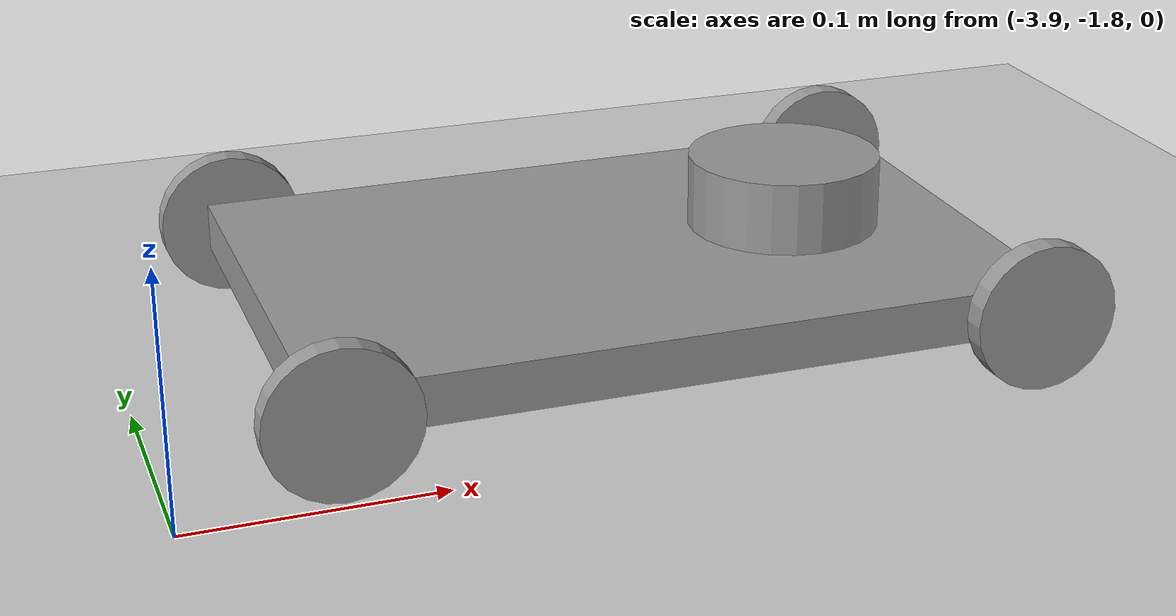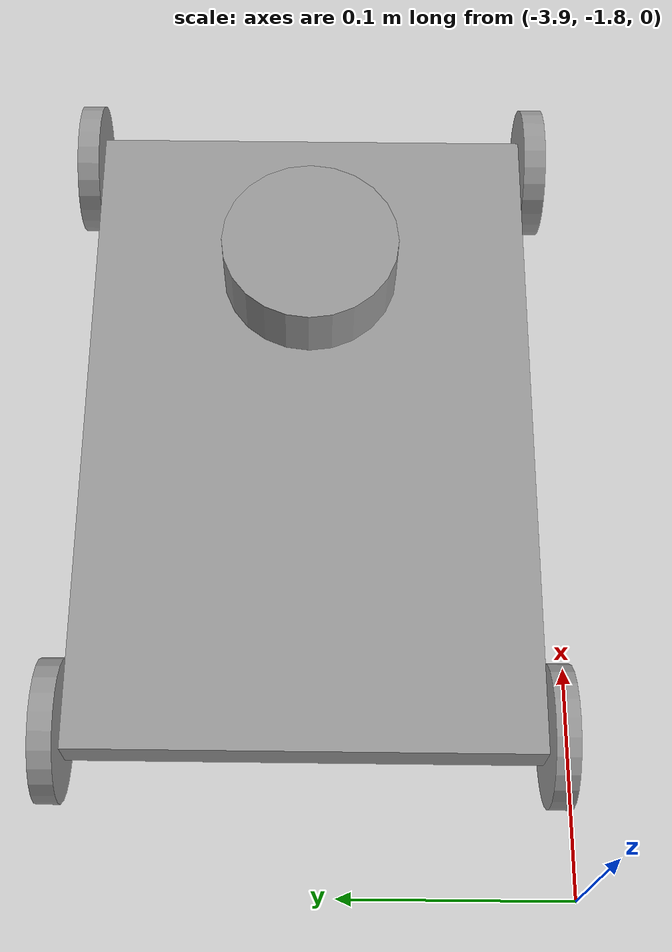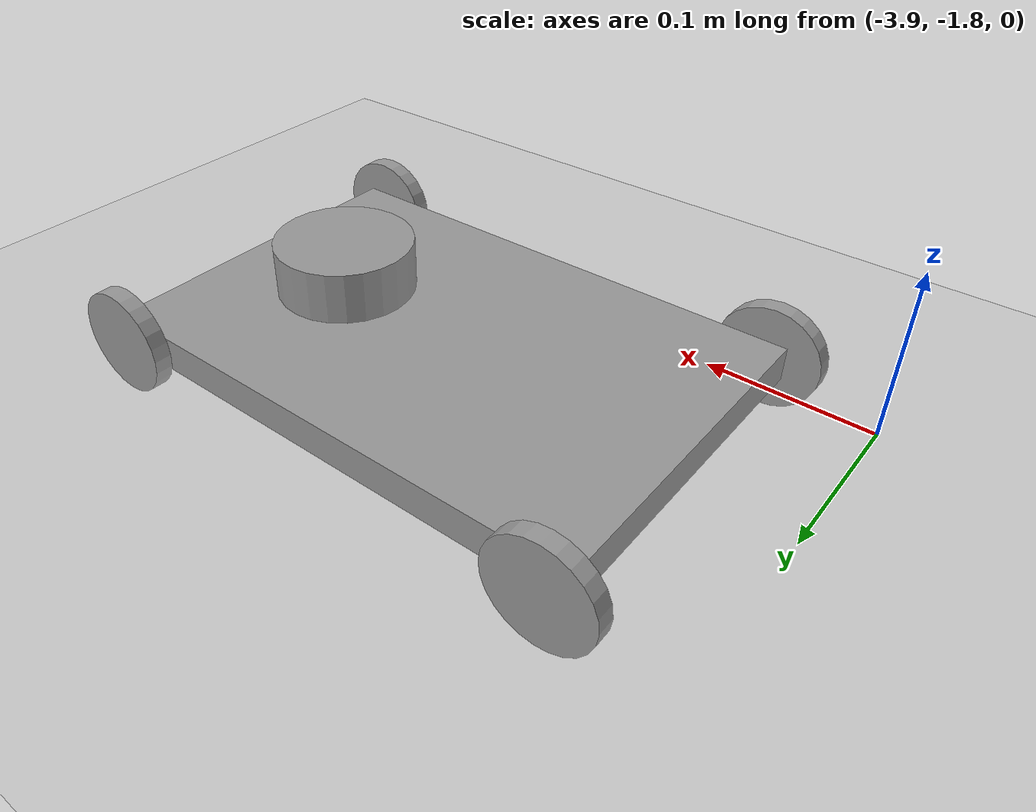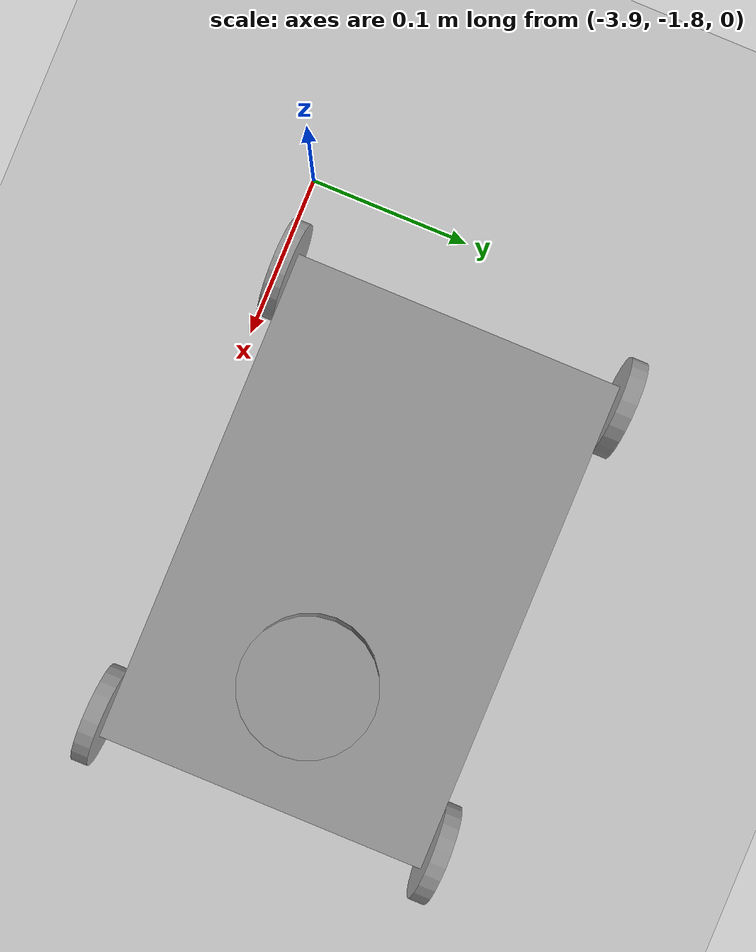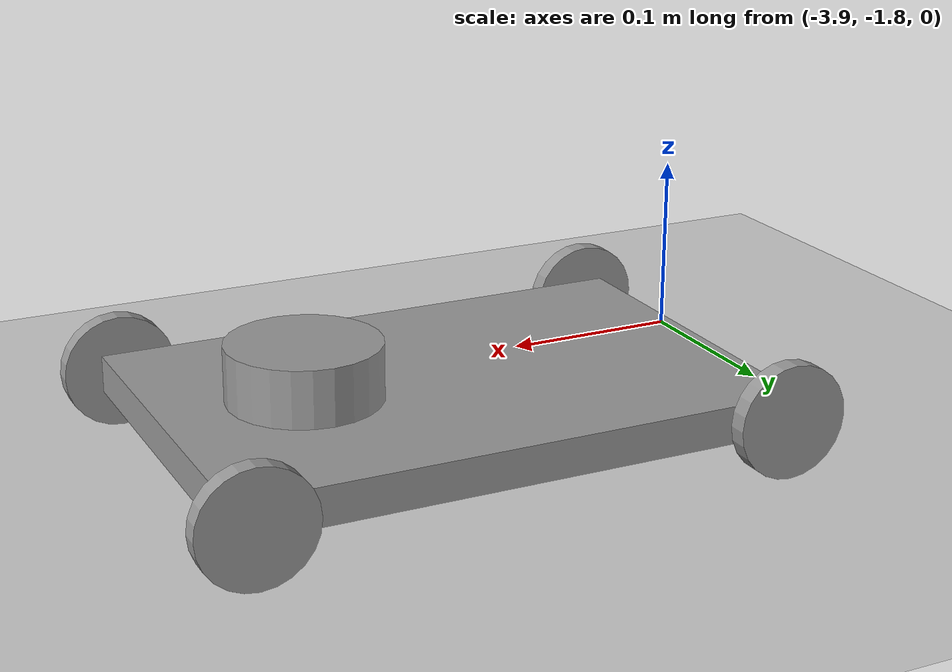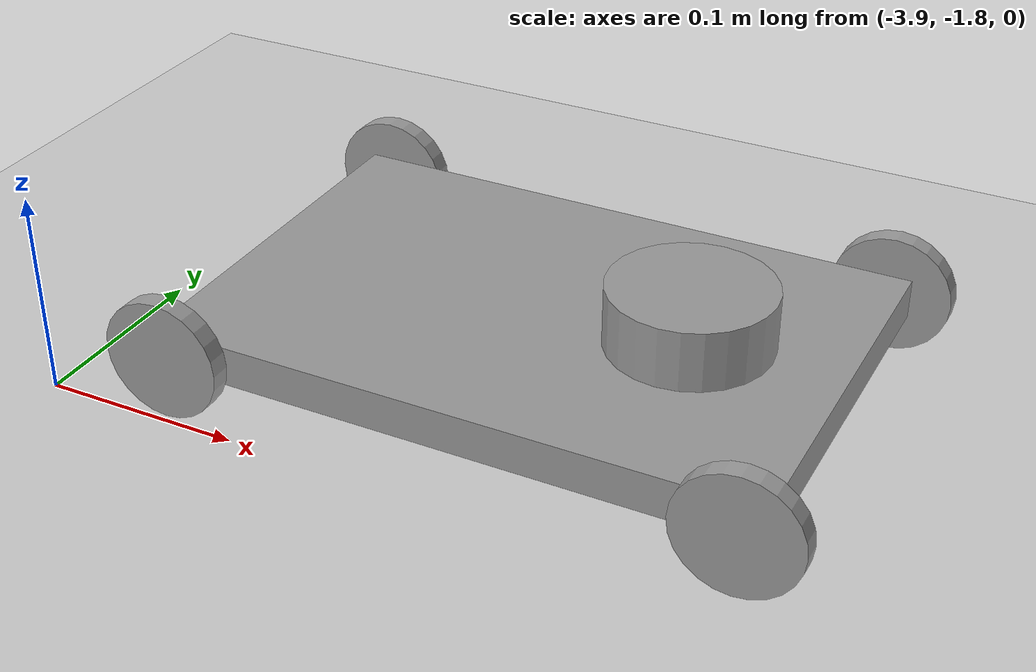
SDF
<sdf version="1.6">
 <world name="default">
  <model name="ground_plane">
   <static>1</static>
   <link name="link">
    <collision name="collision">
     <geometry><plane><normal>0 0 1</normal><size>100 100</size></plane></geometry>
     <surface><friction><ode><mu>100</mu><mu2>50</mu2></ode></friction></surface>
    </collision>
    <visual name="visual">
     <cast_shadows>0</cast_shadows>
     <geometry><plane><normal>0 0 1</normal><size>100 100</size></plane></geometry>
     <material>
      <script><uri>file://media/materials/scripts/gazebo.material</uri><name>Gazebo/Grey</name></script>
     </material>
    </visual>
   </link>
  </model>
  <model name="myrobot_clone">
   <link name="link_0">
    <pose>-0.079072 0.08625 0.009834 0 -0 0</pose>
    <inertial>
     <mass>1</mass>
     <inertia>
      <ixx>0.166667</ixx>
      <ixy>0</ixy>
      <ixz>0</ixz>
      <iyy>0.166667</iyy>
      <iyz>0</iyz>
      <izz>0.166667</izz>
     </inertia>
     <pose>0 0 0.03 0 -0 0</pose>
    </inertial>
    <visual name="visual">
     <pose>0 0 0.03 0 -0 0</pose>
     <geometry><box><size>0.3 0.2 0.02</size></box></geometry>
     <material>
      <lighting>1</lighting>
      <script><uri>file://media/materials/scripts/gazebo.material</uri><name>Gazebo/Grey</name></script>
      <shader type="pixel"><normal_map>__default__</normal_map></shader>
      <ambient>0.3 0.3 0.3 1</ambient>
      <diffuse>0.7 0.7 0.7 1</diffuse>
      <specular>0.01 0.01 0.01 1</specular>
      <emissive>0 0 0 1</emissive>
     </material>
    </visual>
    <collision name="collision">
     <pose>0 0 0.03 0 -0 0</pose>
     <geometry><box><size>0.3 0.2 0.02</size></box></geometry>
     <surface>
      <friction>
       <ode><mu>1</mu><mu2>1</mu2><fdir1>0 0 0</fdir1><slip1>0</slip1><slip2>0</slip2></ode>
       <torsional>
        <coefficient>1</coefficient>
        <patch_radius>0</patch_radius>
        <surface_radius>0</surface_radius>
        <use_patch_radius>1</use_patch_radius>
        <ode><slip>0</slip></ode>
       </torsional>
      </friction>
      <bounce><restitution_coefficient>0</restitution_coefficient><threshold>1e+06</threshold></bounce>
      <contact>
       <collide_without_contact>0</collide_without_contact>
       <collide_without_contact_bitmask>1</collide_without_contact_bitmask>
       <collide_bitmask>1</collide_bitmask>
       <ode>
        <soft_cfm>0</soft_cfm>
        <soft_erp>0.2</soft_erp>
        <kp>1e+13</kp>
        <kd>1</kd>
        <max_vel>0.01</max_vel>
        <min_depth>0</min_depth>
       </ode>
       <bullet>
        <split_impulse>1</split_impulse>
        <split_impulse_penetration_threshold>-0.01</split_impulse_penetration_threshold>
        <soft_cfm>0</soft_cfm>
        <soft_erp>0.2</soft_erp>
        <kp>1e+13</kp>
        <kd>1</kd>
       </bullet>
      </contact>
     </surface>
    </collision>
   </link>
   <link name="link_1">
    <pose>0.060928 -0.01875 0.039833 1.5708 -0 0</pose>
    <inertial>
     <mass>1</mass>
     <inertia><ixx>0.145833</ixx><ixy>0</ixy><ixz>0</ixz><iyy>0.145833</iyy><iyz>0</iyz><izz>0.125</izz></inertia>
    </inertial>
    <visual name="visual">
     <geometry><cylinder><radius>0.03</radius><length>0.01</length></cylinder></geometry>
     <material>
      <lighting>1</lighting>
      <script><uri>file://media/materials/scripts/gazebo.material</uri><name>Gazebo/Grey</name></script>
      <shader type="pixel"><normal_map>__default__</normal_map></shader>
      <ambient>0.3 0.3 0.3 1</ambient>
      <diffuse>0.7 0.7 0.7 1</diffuse>
      <specular>0.01 0.01 0.01 1</specular>
      <emissive>0 0 0 1</emissive>
     </material>
    </visual>
    <collision name="collision">
     <geometry><cylinder><radius>0.03</radius><length>0.01</length></cylinder></geometry>
     <surface>
      <friction>
       <ode><mu>1</mu><mu2>1</mu2><fdir1>0 0 0</fdir1><slip1>0</slip1><slip2>0</slip2></ode>
       <torsional>
        <coefficient>1</coefficient>
        <patch_radius>0</patch_radius>
        <surface_radius>0</surface_radius>
        <use_patch_radius>1</use_patch_radius>
        <ode><slip>0</slip></ode>
       </torsional>
      </friction>
      <bounce><restitution_coefficient>0</restitution_coefficient><threshold>1e+06</threshold></bounce>
      <contact>
       <collide_without_contact>0</collide_without_contact>
       <collide_without_contact_bitmask>1</collide_without_contact_bitmask>
       <collide_bitmask>1</collide_bitmask>
       <ode>
        <soft_cfm>0</soft_cfm>
        <soft_erp>0.2</soft_erp>
        <kp>1e+13</kp>
        <kd>1</kd>
        <max_vel>0.01</max_vel>
        <min_depth>0</min_depth>
       </ode>
       <bullet>
        <split_impulse>1</split_impulse>
        <split_impulse_penetration_threshold>-0.01</split_impulse_penetration_threshold>
        <soft_cfm>0</soft_cfm>
        <soft_erp>0.2</soft_erp>
        <kp>1e+13</kp>
        <kd>1</kd>
       </bullet>
      </contact>
     </surface>
    </collision>
   </link>
   <link name="link_1_clone">
    <pose>-0.219072 -0.01875 0.039833 1.5708 -0 0</pose>
    <inertial>
     <mass>1</mass>
     <inertia><ixx>0.145833</ixx><ixy>0</ixy><ixz>0</ixz><iyy>0.145833</iyy><iyz>0</iyz><izz>0.125</izz></inertia>
    </inertial>
    <visual name="visual">
     <geometry><cylinder><radius>0.03</radius><length>0.01</length></cylinder></geometry>
     <material>
      <lighting>1</lighting>
      <script><uri>file://media/materials/scripts/gazebo.material</uri><name>Gazebo/Grey</name></script>
      <shader type="pixel"><normal_map>__default__</normal_map></shader>
      <ambient>0.3 0.3 0.3 1</ambient>
      <diffuse>0.7 0.7 0.7 1</diffuse>
      <specular>0.01 0.01 0.01 1</specular>
      <emissive>0 0 0 1</emissive>
     </material>
    </visual>
    <collision name="collision">
     <geometry><cylinder><radius>0.03</radius><length>0.01</length></cylinder></geometry>
     <surface>
      <friction>
       <ode><mu>1</mu><mu2>1</mu2><fdir1>0 0 0</fdir1><slip1>0</slip1><slip2>0</slip2></ode>
       <torsional>
        <coefficient>1</coefficient>
        <patch_radius>0</patch_radius>
        <surface_radius>0</surface_radius>
        <use_patch_radius>1</use_patch_radius>
        <ode><slip>0</slip></ode>
       </torsional>
      </friction>
      <bounce><restitution_coefficient>0</restitution_coefficient><threshold>1e+06</threshold></bounce>
      <contact>
       <collide_without_contact>0</collide_without_contact>
       <collide_without_contact_bitmask>1</collide_without_contact_bitmask>
       <collide_bitmask>1</collide_bitmask>
       <ode>
        <soft_cfm>0</soft_cfm>
        <soft_erp>0.2</soft_erp>
        <kp>1e+13</kp>
        <kd>1</kd>
        <max_vel>0.01</max_vel>
        <min_depth>0</min_depth>
       </ode>
       <bullet>
        <split_impulse>1</split_impulse>
        <split_impulse_penetration_threshold>-0.01</split_impulse_penetration_threshold>
        <soft_cfm>0</soft_cfm>
        <soft_erp>0.2</soft_erp>
        <kp>1e+13</kp>
        <kd>1</kd>
       </bullet>
      </contact>
     </surface>
    </collision>
   </link>
   <link name="link_1_clone_0">
    <pose>-0.219072 0.19125 0.039833 1.5708 -0 0</pose>
    <inertial>
     <mass>1</mass>
     <inertia><ixx>0.145833</ixx><ixy>0</ixy><ixz>0</ixz><iyy>0.145833</iyy><iyz>0</iyz><izz>0.125</izz></inertia>
    </inertial>
    <visual name="visual">
     <geometry><cylinder><radius>0.03</radius><length>0.01</length></cylinder></geometry>
     <material>
      <lighting>1</lighting>
      <script><uri>file://media/materials/scripts/gazebo.material</uri><name>Gazebo/Grey</name></script>
      <shader type="pixel"><normal_map>__default__</normal_map></shader>
      <ambient>0.3 0.3 0.3 1</ambient>
      <diffuse>0.7 0.7 0.7 1</diffuse>
      <specular>0.01 0.01 0.01 1</specular>
      <emissive>0 0 0 1</emissive>
     </material>
    </visual>
    <collision name="collision">
     <geometry><cylinder><radius>0.03</radius><length>0.01</length></cylinder></geometry>
     <surface>
      <friction>
       <ode><mu>1</mu><mu2>1</mu2><fdir1>0 0 0</fdir1><slip1>0</slip1><slip2>0</slip2></ode>
       <torsional>
        <coefficient>1</coefficient>
        <patch_radius>0</patch_radius>
        <surface_radius>0</surface_radius>
        <use_patch_radius>1</use_patch_radius>
        <ode><slip>0</slip></ode>
       </torsional>
      </friction>
      <bounce><restitution_coefficient>0</restitution_coefficient><threshold>1e+06</threshold></bounce>
      <contact>
       <collide_without_contact>0</collide_without_contact>
       <collide_without_contact_bitmask>1</collide_without_contact_bitmask>
       <collide_bitmask>1</collide_bitmask>
       <ode>
        <soft_cfm>0</soft_cfm>
        <soft_erp>0.2</soft_erp>
        <kp>1e+13</kp>
        <kd>1</kd>
        <max_vel>0.01</max_vel>
        <min_depth>0</min_depth>
       </ode>
       <bullet>
        <split_impulse>1</split_impulse>
        <split_impulse_penetration_threshold>-0.01</split_impulse_penetration_threshold>
        <soft_cfm>0</soft_cfm>
        <soft_erp>0.2</soft_erp>
        <kp>1e+13</kp>
        <kd>1</kd>
       </bullet>
      </contact>
     </surface>
    </collision>
   </link>
   <link name="link_1_clone_1">
    <pose>0.060928 0.19125 0.039833 1.5708 -0 0</pose>
    <inertial>
     <mass>1</mass>
     <inertia><ixx>0.145833</ixx><ixy>0</ixy><ixz>0</ixz><iyy>0.145833</iyy><iyz>0</iyz><izz>0.125</izz></inertia>
    </inertial>
    <visual name="visual">
     <geometry><cylinder><radius>0.03</radius><length>0.01</length></cylinder></geometry>
     <material>
      <lighting>1</lighting>
      <script><uri>file://media/materials/scripts/gazebo.material</uri><name>Gazebo/Grey</name></script>
      <shader type="pixel"><normal_map>__default__</normal_map></shader>
      <ambient>0.3 0.3 0.3 1</ambient>
      <diffuse>0.7 0.7 0.7 1</diffuse>
      <specular>0.01 0.01 0.01 1</specular>
      <emissive>0 0 0 1</emissive>
     </material>
    </visual>
    <collision name="collision">
     <geometry><cylinder><radius>0.03</radius><length>0.01</length></cylinder></geometry>
     <surface>
      <friction>
       <ode><mu>1</mu><mu2>1</mu2><fdir1>0 0 0</fdir1><slip1>0</slip1><slip2>0</slip2></ode>
       <torsional>
        <coefficient>1</coefficient>
        <patch_radius>0</patch_radius>
        <surface_radius>0</surface_radius>
        <use_patch_radius>1</use_patch_radius>
        <ode><slip>0</slip></ode>
       </torsional>
      </friction>
      <bounce><restitution_coefficient>0</restitution_coefficient><threshold>1e+06</threshold></bounce>
      <contact>
       <collide_without_contact>0</collide_without_contact>
       <collide_without_contact_bitmask>1</collide_without_contact_bitmask>
       <collide_bitmask>1</collide_bitmask>
       <ode>
        <soft_cfm>0</soft_cfm>
        <soft_erp>0.2</soft_erp>
        <kp>1e+13</kp>
        <kd>1</kd>
        <max_vel>0.01</max_vel>
        <min_depth>0</min_depth>
       </ode>
       <bullet>
        <split_impulse>1</split_impulse>
        <split_impulse_penetration_threshold>-0.01</split_impulse_penetration_threshold>
        <soft_cfm>0</soft_cfm>
        <soft_erp>0.2</soft_erp>
        <kp>1e+13</kp>
        <kd>1</kd>
       </bullet>
      </contact>
     </surface>
    </collision>
   </link>
   <link name="link_2">
    <pose>-0.004072 0.08625 0.064834 0 -0 0</pose>
    <inertial>
     <mass>1</mass>
     <inertia><ixx>0.145833</ixx><ixy>0</ixy><ixz>0</ixz><iyy>0.145833</iyy><iyz>0</iyz><izz>0.125</izz></inertia>
    </inertial>
    <visual name="visual">
     <geometry><cylinder><radius>0.04</radius><length>0.03</length></cylinder></geometry>
     <material>
      <lighting>1</lighting>
      <script><uri>file://media/materials/scripts/gazebo.material</uri><name>Gazebo/Grey</name></script>
      <shader type="pixel"><normal_map>__default__</normal_map></shader>
      <ambient>0.3 0.3 0.3 1</ambient>
      <diffuse>0.7 0.7 0.7 1</diffuse>
      <specular>0.01 0.01 0.01 1</specular>
      <emissive>0 0 0 1</emissive>
     </material>
    </visual>
    <collision name="collision">
     <geometry><cylinder><radius>0.04</radius><length>0.03</length></cylinder></geometry>
     <surface>
      <friction>
       <ode><mu>1</mu><mu2>1</mu2><fdir1>0 0 0</fdir1><slip1>0</slip1><slip2>0</slip2></ode>
       <torsional>
        <coefficient>1</coefficient>
        <patch_radius>0</patch_radius>
        <surface_radius>0</surface_radius>
        <use_patch_radius>1</use_patch_radius>
        <ode><slip>0</slip></ode>
       </torsional>
      </friction>
      <bounce><restitution_coefficient>0</restitution_coefficient><threshold>1e+06</threshold></bounce>
      <contact>
       <collide_without_contact>0</collide_without_contact>
       <collide_without_contact_bitmask>1</collide_without_contact_bitmask>
       <collide_bitmask>1</collide_bitmask>
       <ode>
        <soft_cfm>0</soft_cfm>
        <soft_erp>0.2</soft_erp>
        <kp>1e+13</kp>
        <kd>1</kd>
        <max_vel>0.01</max_vel>
        <min_depth>0</min_depth>
       </ode>
       <bullet>
        <split_impulse>1</split_impulse>
        <split_impulse_penetration_threshold>-0.01</split_impulse_penetration_threshold>
        <soft_cfm>0</soft_cfm>
        <soft_erp>0.2</soft_erp>
        <kp>1e+13</kp>
        <kd>1</kd>
       </bullet>
      </contact>
     </surface>
    </collision>
   </link>
   <joint name="link_0_JOINT_0" type="revolute">
    <parent>link_0</parent>
    <child>link_1</child>
    <axis>
     <xyz>0 0 1</xyz>
     <use_parent_model_frame>0</use_parent_model_frame>
     <limit>
      <lower>-1.79769e+308</lower>
      <upper>1.79769e+308</upper>
      <effort>-1</effort>
      <velocity>-1</velocity>
     </limit>
     <dynamics>
      <spring_reference>0</spring_reference>
      <spring_stiffness>0</spring_stiffness>
      <damping>0</damping>
     </dynamics>
    </axis>
    <physics>
     <ode><limit><cfm>0</cfm><erp>0.2</erp></limit><suspension><cfm>0</cfm><erp>0.2</erp></suspension></ode>
    </physics>
   </joint>
   <joint name="link_0_JOINT_1" type="revolute">
    <parent>link_0</parent>
    <child>link_1_clone_1</child>
    <axis>
     <xyz>0 0 1</xyz>
     <use_parent_model_frame>0</use_parent_model_frame>
     <limit>
      <lower>-1.79769e+308</lower>
      <upper>1.79769e+308</upper>
      <effort>-1</effort>
      <velocity>-1</velocity>
     </limit>
     <dynamics>
      <spring_reference>0</spring_reference>
      <spring_stiffness>0</spring_stiffness>
      <damping>0</damping>
     </dynamics>
    </axis>
    <physics>
     <ode><limit><cfm>0</cfm><erp>0.2</erp></limit><suspension><cfm>0</cfm><erp>0.2</erp></suspension></ode>
    </physics>
   </joint>
   <joint name="link_0_JOINT_2" type="revolute">
    <parent>link_0</parent>
    <child>link_1_clone_0</child>
    <axis>
     <xyz>0 0 1</xyz>
     <use_parent_model_frame>0</use_parent_model_frame>
     <limit>
      <lower>-1.79769e+308</lower>
      <upper>1.79769e+308</upper>
      <effort>-1</effort>
      <velocity>-1</velocity>
     </limit>
     <dynamics>
      <spring_reference>0</spring_reference>
      <spring_stiffness>0</spring_stiffness>
      <damping>0</damping>
     </dynamics>
    </axis>
    <physics>
     <ode><limit><cfm>0</cfm><erp>0.2</erp></limit><suspension><cfm>0</cfm><erp>0.2</erp></suspension></ode>
    </physics>
   </joint>
   <joint name="link_0_JOINT_3" type="revolute">
    <parent>link_0</parent>
    <child>link_1_clone</child>
    <axis>
     <xyz>0 0 1</xyz>
     <use_parent_model_frame>0</use_parent_model_frame>
     <limit>
      <lower>-1.79769e+308</lower>
      <upper>1.79769e+308</upper>
      <effort>-1</effort>
      <velocity>-1</velocity>
     </limit>
     <dynamics>
      <spring_reference>0</spring_reference>
      <spring_stiffness>0</spring_stiffness>
      <damping>0</damping>
     </dynamics>
    </axis>
    <physics>
     <ode><limit><cfm>0</cfm><erp>0.2</erp></limit><suspension><cfm>0</cfm><erp>0.2</erp></suspension></ode>
    </physics>
   </joint>
   <joint name="link_0_JOINT_4" type="revolute">
    <parent>link_0</parent>
    <child>link_2</child>
    <axis>
     <xyz>0 0 1</xyz>
     <use_parent_model_frame>0</use_parent_model_frame>
     <limit>
      <lower>-1.79769e+308</lower>
      <upper>1.79769e+308</upper>
      <effort>-1</effort>
      <velocity>-1</velocity>
     </limit>
     <dynamics>
      <spring_reference>0</spring_reference>
      <spring_stiffness>0</spring_stiffness>
      <damping>0</damping>
     </dynamics>
    </axis>
    <physics>
     <ode><limit><cfm>0</cfm><erp>0.2</erp></limit><suspension><cfm>0</cfm><erp>0.2</erp></suspension></ode>
    </physics>
   </joint>
   <static>0</static>
   <pose>-3.61871 -1.77273 -0.009834 -0 4e-06 -0.000496</pose>
  </model>
 </world>
</sdf>
